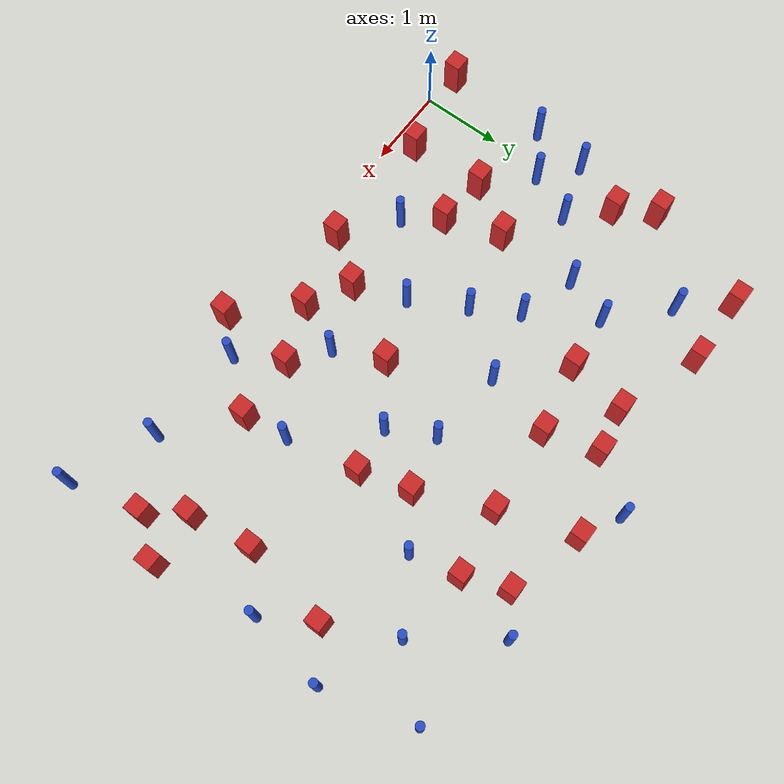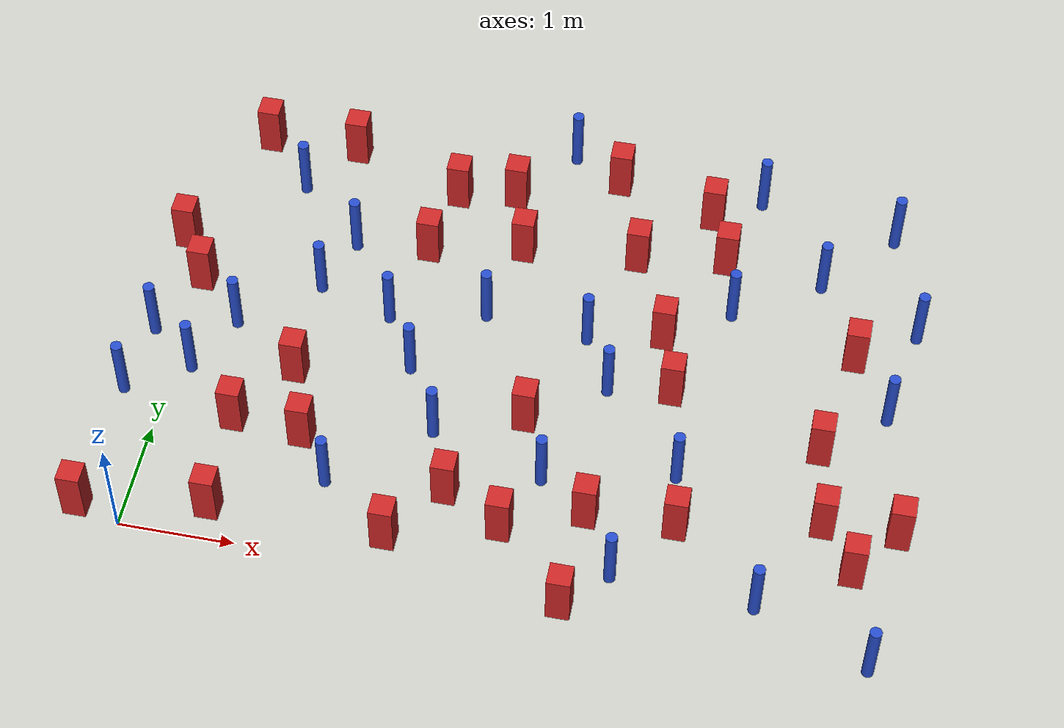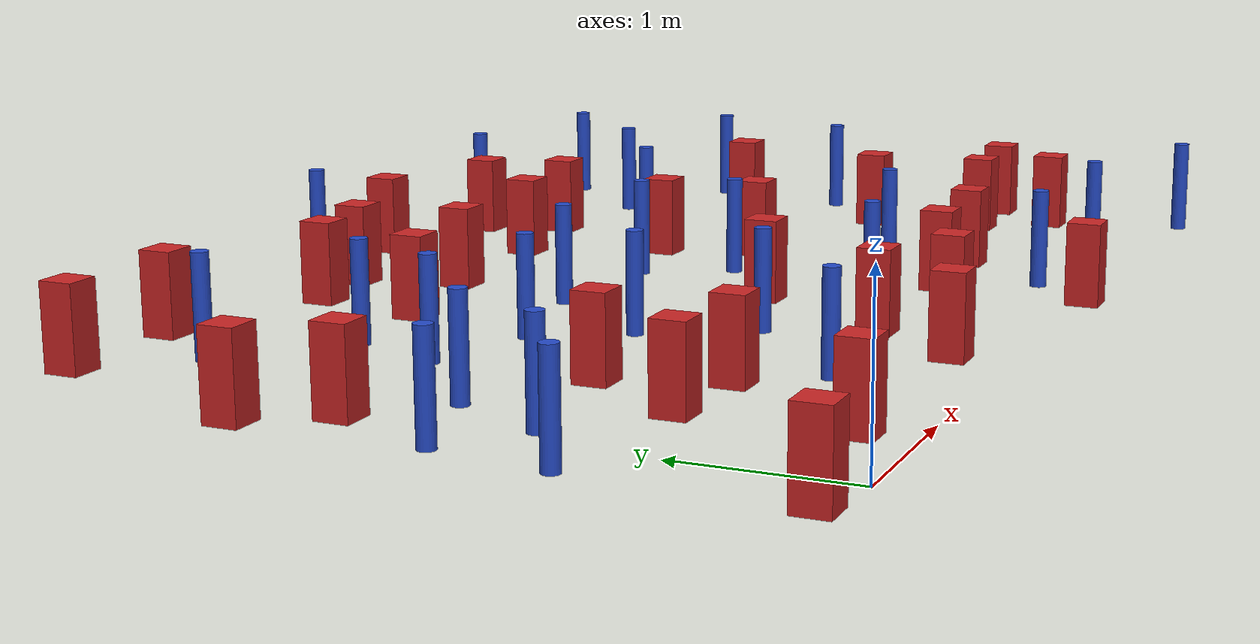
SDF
<sdf version="1.6">
 <model name="dense_84">
  <model name="square_post_obstacle0">
   <static>true</static>
   <pose>3.47742951445 4.54623904992 8.22691968438e-08 7.2212513382e-06 -7.54495500217e-07 2.29674213826e-05</pose>
   <link name="link">
    <pose>0 0 0.25 0 -0 0</pose>
    <inertial>
     <mass>100</mass>
     <inertia>
      <ixx>0.166667</ixx>
      <ixy>0</ixy>
      <ixz>0</ixz>
      <iyy>0.166667</iyy>
      <iyz>0</iyz>
      <izz>0.166667</izz>
     </inertia>
    </inertial>
    <collision name="collision"><geometry><box><size>.2 .2 .5</size></box></geometry></collision>
    <visual name="visual">
     <geometry><box><size>.2 .2 .5</size></box></geometry>
     <material>
      <script><name>Gazebo/Red</name><uri>file://media/materials/scripts/gazebo.material</uri></script>
     </material>
    </visual>
   </link>
  </model>
  <model name="square_post_obstacle1">
   <static>true</static>
   <pose>4.56344574119 0.853142851961 8.22691968438e-08 7.2212513382e-06 -7.54495500217e-07 2.29674213826e-05</pose>
   <link name="link">
    <pose>0 0 0.25 0 -0 0</pose>
    <inertial>
     <mass>100</mass>
     <inertia>
      <ixx>0.166667</ixx>
      <ixy>0</ixy>
      <ixz>0</ixz>
      <iyy>0.166667</iyy>
      <iyz>0</iyz>
      <izz>0.166667</izz>
     </inertia>
    </inertial>
    <collision name="collision"><geometry><box><size>.2 .2 .5</size></box></geometry></collision>
    <visual name="visual">
     <geometry><box><size>.2 .2 .5</size></box></geometry>
     <material>
      <script><name>Gazebo/Red</name><uri>file://media/materials/scripts/gazebo.material</uri></script>
     </material>
    </visual>
   </link>
  </model>
  <model name="square_post_obstacle3">
   <static>true</static>
   <pose>6.05488720477 0.67913591342 8.22691968438e-08 7.2212513382e-06 -7.54495500217e-07 2.29674213826e-05</pose>
   <link name="link">
    <pose>0 0 0.25 0 -0 0</pose>
    <inertial>
     <mass>100</mass>
     <inertia>
      <ixx>0.166667</ixx>
      <ixy>0</ixy>
      <ixz>0</ixz>
      <iyy>0.166667</iyy>
      <iyz>0</iyz>
      <izz>0.166667</izz>
     </inertia>
    </inertial>
    <collision name="collision"><geometry><box><size>.2 .2 .5</size></box></geometry></collision>
    <visual name="visual">
     <geometry><box><size>.2 .2 .5</size></box></geometry>
     <material>
      <script><name>Gazebo/Red</name><uri>file://media/materials/scripts/gazebo.material</uri></script>
     </material>
    </visual>
   </link>
  </model>
  <model name="pole_obstacle11">
   <static>true</static>
   <pose>0.41692032327 2.27141418955 2.88873142074e-08 -9.90536689663e-09 4.60219948993e-07 -1.20965994959e-07</pose>
   <link name="link">
    <pose>0 0 0.3 0 -0 0</pose>
    <inertial>
     <mass>1</mass>
     <inertia><ixx>0.145833</ixx><ixy>0</ixy><ixz>0</ixz><iyy>0.145833</iyy><iyz>0</iyz><izz>0.125</izz></inertia>
    </inertial>
    <collision name="collision">
     <geometry><cylinder><radius>0.05</radius><length>.6</length></cylinder></geometry>
    </collision>
    <visual name="visual">
     <geometry><cylinder><radius>0.05</radius><length>.6</length></cylinder></geometry>
     <material>
      <script><name>Gazebo/Blue</name><uri>file://media/materials/scripts/gazebo.material</uri></script>
     </material>
    </visual>
   </link>
  </model>
  <model name="pole_obstacle13">
   <static>true</static>
   <pose>0.152913802134 1.71130107241 2.88873142074e-08 -9.90536689569e-09 4.60219948996e-07 -1.20965994956e-07</pose>
   <link name="link">
    <pose>0 0 0.3 0 -0 0</pose>
    <inertial>
     <mass>1</mass>
     <inertia><ixx>0.145833</ixx><ixy>0</ixy><ixz>0</ixz><iyy>0.145833</iyy><iyz>0</iyz><izz>0.125</izz></inertia>
    </inertial>
    <collision name="collision">
     <geometry><cylinder><radius>0.05</radius><length>.6</length></cylinder></geometry>
    </collision>
    <visual name="visual">
     <geometry><cylinder><radius>0.05</radius><length>.6</length></cylinder></geometry>
     <material>
      <script><name>Gazebo/Blue</name><uri>file://media/materials/scripts/gazebo.material</uri></script>
     </material>
    </visual>
   </link>
  </model>
  <model name="square_post_obstacle12">
   <static>true</static>
   <pose>-0.271276717077 3.13880675814 8.22691968438e-08 7.2212513382e-06 -7.54495500217e-07 2.29674213826e-05</pose>
   <link name="link">
    <pose>0 0 0.25 0 -0 0</pose>
    <inertial>
     <mass>100</mass>
     <inertia>
      <ixx>0.166667</ixx>
      <ixy>0</ixy>
      <ixz>0</ixz>
      <iyy>0.166667</iyy>
      <iyz>0</iyz>
      <izz>0.166667</izz>
     </inertia>
    </inertial>
    <collision name="collision"><geometry><box><size>.2 .2 .5</size></box></geometry></collision>
    <visual name="visual">
     <geometry><box><size>.2 .2 .5</size></box></geometry>
     <material>
      <script><name>Gazebo/Red</name><uri>file://media/materials/scripts/gazebo.material</uri></script>
     </material>
    </visual>
   </link>
  </model>
  <model name="pole_obstacle24">
   <static>true</static>
   <pose>1.59024964066 0.750436369844 2.88873142074e-08 -9.90536689692e-09 4.60219948993e-07 -1.20965994958e-07</pose>
   <link name="link">
    <pose>0 0 0.3 0 -0 0</pose>
    <inertial>
     <mass>1</mass>
     <inertia><ixx>0.145833</ixx><ixy>0</ixy><ixz>0</ixz><iyy>0.145833</iyy><iyz>0</iyz><izz>0.125</izz></inertia>
    </inertial>
    <collision name="collision">
     <geometry><cylinder><radius>0.05</radius><length>.6</length></cylinder></geometry>
    </collision>
    <visual name="visual">
     <geometry><cylinder><radius>0.05</radius><length>.6</length></cylinder></geometry>
     <material>
      <script><name>Gazebo/Blue</name><uri>file://media/materials/scripts/gazebo.material</uri></script>
     </material>
    </visual>
   </link>
  </model>
  <model name="square_post_obstacle24">
   <static>true</static>
   <pose>4.31556763896 2.23022719634 8.22691968438e-08 7.2212513382e-06 -7.54495500217e-07 2.29674213826e-05</pose>
   <link name="link">
    <pose>0 0 0.25 0 -0 0</pose>
    <inertial>
     <mass>100</mass>
     <inertia>
      <ixx>0.166667</ixx>
      <ixy>0</ixy>
      <ixz>0</ixz>
      <iyy>0.166667</iyy>
      <iyz>0</iyz>
      <izz>0.166667</izz>
     </inertia>
    </inertial>
    <collision name="collision"><geometry><box><size>.2 .2 .5</size></box></geometry></collision>
    <visual name="visual">
     <geometry><box><size>.2 .2 .5</size></box></geometry>
     <material>
      <script><name>Gazebo/Red</name><uri>file://media/materials/scripts/gazebo.material</uri></script>
     </material>
    </visual>
   </link>
  </model>
  <model name="square_post_obstacle29">
   <static>true</static>
   <pose>2.04416554064 4.11146892054 8.22691968438e-08 7.22125133819e-06 -7.54495500217e-07 2.29674213826e-05</pose>
   <link name="link">
    <pose>0 0 0.25 0 -0 0</pose>
    <inertial>
     <mass>100</mass>
     <inertia>
      <ixx>0.166667</ixx>
      <ixy>0</ixy>
      <ixz>0</ixz>
      <iyy>0.166667</iyy>
      <iyz>0</iyz>
      <izz>0.166667</izz>
     </inertia>
    </inertial>
    <collision name="collision"><geometry><box><size>.2 .2 .5</size></box></geometry></collision>
    <visual name="visual">
     <geometry><box><size>.2 .2 .5</size></box></geometry>
     <material>
      <script><name>Gazebo/Red</name><uri>file://media/materials/scripts/gazebo.material</uri></script>
     </material>
    </visual>
   </link>
  </model>
  <model name="square_post_obstacle34">
   <static>true</static>
   <pose>2.21258162779 0.286867539895 8.22691968438e-08 7.2212513382e-06 -7.54495500217e-07 2.29674213826e-05</pose>
   <link name="link">
    <pose>0 0 0.25 0 -0 0</pose>
    <inertial>
     <mass>100</mass>
     <inertia>
      <ixx>0.166667</ixx>
      <ixy>0</ixy>
      <ixz>0</ixz>
      <iyy>0.166667</iyy>
      <iyz>0</iyz>
      <izz>0.166667</izz>
     </inertia>
    </inertial>
    <collision name="collision"><geometry><box><size>.2 .2 .5</size></box></geometry></collision>
    <visual name="visual">
     <geometry><box><size>.2 .2 .5</size></box></geometry>
     <material>
      <script><name>Gazebo/Red</name><uri>file://media/materials/scripts/gazebo.material</uri></script>
     </material>
    </visual>
   </link>
  </model>
  <model name="pole_obstacle43">
   <static>true</static>
   <pose>5.31301693984 0.208781446296 2.88873142074e-08 -9.90536689438e-09 4.60219948999e-07 -1.20965994956e-07</pose>
   <link name="link">
    <pose>0 0 0.3 0 -0 0</pose>
    <inertial>
     <mass>1</mass>
     <inertia><ixx>0.145833</ixx><ixy>0</ixy><ixz>0</ixz><iyy>0.145833</iyy><iyz>0</iyz><izz>0.125</izz></inertia>
    </inertial>
    <collision name="collision">
     <geometry><cylinder><radius>0.05</radius><length>.6</length></cylinder></geometry>
    </collision>
    <visual name="visual">
     <geometry><cylinder><radius>0.05</radius><length>.6</length></cylinder></geometry>
     <material>
      <script><name>Gazebo/Blue</name><uri>file://media/materials/scripts/gazebo.material</uri></script>
     </material>
    </visual>
   </link>
  </model>
  <model name="square_post_obstacle38">
   <static>true</static>
   <pose>4.37278872621 4.28910100385 8.22691968438e-08 7.2212513382e-06 -7.54495500217e-07 2.29674213826e-05</pose>
   <link name="link">
    <pose>0 0 0.25 0 -0 0</pose>
    <inertial>
     <mass>100</mass>
     <inertia>
      <ixx>0.166667</ixx>
      <ixy>0</ixy>
      <ixz>0</ixz>
      <iyy>0.166667</iyy>
      <iyz>0</iyz>
      <izz>0.166667</izz>
     </inertia>
    </inertial>
    <collision name="collision"><geometry><box><size>.2 .2 .5</size></box></geometry></collision>
    <visual name="visual">
     <geometry><box><size>.2 .2 .5</size></box></geometry>
     <material>
      <script><name>Gazebo/Red</name><uri>file://media/materials/scripts/gazebo.material</uri></script>
     </material>
    </visual>
   </link>
  </model>
  <model name="square_post_obstacle50">
   <static>true</static>
   <pose>0.704228342096 0.293658723226 8.22691968438e-08 7.22125133819e-06 -7.54495500217e-07 2.29674213826e-05</pose>
   <link name="link">
    <pose>0 0 0.25 0 -0 0</pose>
    <inertial>
     <mass>100</mass>
     <inertia>
      <ixx>0.166667</ixx>
      <ixy>0</ixy>
      <ixz>0</ixz>
      <iyy>0.166667</iyy>
      <iyz>0</iyz>
      <izz>0.166667</izz>
     </inertia>
    </inertial>
    <collision name="collision"><geometry><box><size>.2 .2 .5</size></box></geometry></collision>
    <visual name="visual">
     <geometry><box><size>.2 .2 .5</size></box></geometry>
     <material>
      <script><name>Gazebo/Red</name><uri>file://media/materials/scripts/gazebo.material</uri></script>
     </material>
    </visual>
   </link>
  </model>
  <model name="square_post_obstacle51">
   <static>true</static>
   <pose>3.80689490585 0.824405874443 8.22691968438e-08 7.2212513382e-06 -7.54495500217e-07 2.29674213826e-05</pose>
   <link name="link">
    <pose>0 0 0.25 0 -0 0</pose>
    <inertial>
     <mass>100</mass>
     <inertia>
      <ixx>0.166667</ixx>
      <ixy>0</ixy>
      <ixz>0</ixz>
      <iyy>0.166667</iyy>
      <iyz>0</iyz>
      <izz>0.166667</izz>
     </inertia>
    </inertial>
    <collision name="collision"><geometry><box><size>.2 .2 .5</size></box></geometry></collision>
    <visual name="visual">
     <geometry><box><size>.2 .2 .5</size></box></geometry>
     <material>
      <script><name>Gazebo/Red</name><uri>file://media/materials/scripts/gazebo.material</uri></script>
     </material>
    </visual>
   </link>
  </model>
  <model name="square_post_obstacle58">
   <static>true</static>
   <pose>3.13265907672 0.556025576063 8.22691968438e-08 7.2212513382e-06 -7.54495500217e-07 2.29674213826e-05</pose>
   <link name="link">
    <pose>0 0 0.25 0 -0 0</pose>
    <inertial>
     <mass>100</mass>
     <inertia>
      <ixx>0.166667</ixx>
      <ixy>0</ixy>
      <ixz>0</ixz>
      <iyy>0.166667</iyy>
      <iyz>0</iyz>
      <izz>0.166667</izz>
     </inertia>
    </inertial>
    <collision name="collision"><geometry><box><size>.2 .2 .5</size></box></geometry></collision>
    <visual name="visual">
     <geometry><box><size>.2 .2 .5</size></box></geometry>
     <material>
      <script><name>Gazebo/Red</name><uri>file://media/materials/scripts/gazebo.material</uri></script>
     </material>
    </visual>
   </link>
  </model>
  <model name="square_post_obstacle60">
   <static>true</static>
   <pose>5.64865577283 1.85091283785 8.22691968438e-08 7.2212513382e-06 -7.54495500217e-07 2.29674213826e-05</pose>
   <link name="link">
    <pose>0 0 0.25 0 -0 0</pose>
    <inertial>
     <mass>100</mass>
     <inertia>
      <ixx>0.166667</ixx>
      <ixy>0</ixy>
      <ixz>0</ixz>
      <iyy>0.166667</iyy>
      <iyz>0</iyz>
      <izz>0.166667</izz>
     </inertia>
    </inertial>
    <collision name="collision"><geometry><box><size>.2 .2 .5</size></box></geometry></collision>
    <visual name="visual">
     <geometry><box><size>.2 .2 .5</size></box></geometry>
     <material>
      <script><name>Gazebo/Red</name><uri>file://media/materials/scripts/gazebo.material</uri></script>
     </material>
    </visual>
   </link>
  </model>
  <model name="pole_obstacle71">
   <static>true</static>
   <pose>-0.360008039916 1.37427951775 2.88873142074e-08 -9.90536689905e-09 4.60219948988e-07 -1.2096599496e-07</pose>
   <link name="link">
    <pose>0 0 0.3 0 -0 0</pose>
    <inertial>
     <mass>1</mass>
     <inertia><ixx>0.145833</ixx><ixy>0</ixy><ixz>0</ixz><iyy>0.145833</iyy><iyz>0</iyz><izz>0.125</izz></inertia>
    </inertial>
    <collision name="collision">
     <geometry><cylinder><radius>0.05</radius><length>.6</length></cylinder></geometry>
    </collision>
    <visual name="visual">
     <geometry><cylinder><radius>0.05</radius><length>.6</length></cylinder></geometry>
     <material>
      <script><name>Gazebo/Blue</name><uri>file://media/materials/scripts/gazebo.material</uri></script>
     </material>
    </visual>
   </link>
  </model>
  <model name="pole_obstacle72">
   <static>true</static>
   <pose>6.28156783449 -0.192312432924 2.88873142074e-08 -9.90536689378e-09 4.60219949e-07 -1.20965994955e-07</pose>
   <link name="link">
    <pose>0 0 0.3 0 -0 0</pose>
    <inertial>
     <mass>1</mass>
     <inertia><ixx>0.145833</ixx><ixy>0</ixy><ixz>0</ixz><iyy>0.145833</iyy><iyz>0</iyz><izz>0.125</izz></inertia>
    </inertial>
    <collision name="collision">
     <geometry><cylinder><radius>0.05</radius><length>.6</length></cylinder></geometry>
    </collision>
    <visual name="visual">
     <geometry><cylinder><radius>0.05</radius><length>.6</length></cylinder></geometry>
     <material>
      <script><name>Gazebo/Blue</name><uri>file://media/materials/scripts/gazebo.material</uri></script>
     </material>
    </visual>
   </link>
  </model>
  <model name="pole_obstacle76">
   <static>true</static>
   <pose>1.24704807675 3.35923513077 2.88873142074e-08 -9.90536689791e-09 4.6021994899e-07 -1.20965994959e-07</pose>
   <link name="link">
    <pose>0 0 0.3 0 -0 0</pose>
    <inertial>
     <mass>1</mass>
     <inertia><ixx>0.145833</ixx><ixy>0</ixy><ixz>0</ixz><iyy>0.145833</iyy><iyz>0</iyz><izz>0.125</izz></inertia>
    </inertial>
    <collision name="collision">
     <geometry><cylinder><radius>0.05</radius><length>.6</length></cylinder></geometry>
    </collision>
    <visual name="visual">
     <geometry><cylinder><radius>0.05</radius><length>.6</length></cylinder></geometry>
     <material>
      <script><name>Gazebo/Blue</name><uri>file://media/materials/scripts/gazebo.material</uri></script>
     </material>
    </visual>
   </link>
  </model>
  <model name="pole_obstacle82">
   <static>true</static>
   <pose>6.17669661662 2.3231408978 2.88873142074e-08 -9.90536690245e-09 4.6021994898e-07 -1.20965994966e-07</pose>
   <link name="link">
    <pose>0 0 0.3 0 -0 0</pose>
    <inertial>
     <mass>1</mass>
     <inertia><ixx>0.145833</ixx><ixy>0</ixy><ixz>0</ixz><iyy>0.145833</iyy><iyz>0</iyz><izz>0.125</izz></inertia>
    </inertial>
    <collision name="collision">
     <geometry><cylinder><radius>0.05</radius><length>.6</length></cylinder></geometry>
    </collision>
    <visual name="visual">
     <geometry><cylinder><radius>0.05</radius><length>.6</length></cylinder></geometry>
     <material>
      <script><name>Gazebo/Blue</name><uri>file://media/materials/scripts/gazebo.material</uri></script>
     </material>
    </visual>
   </link>
  </model>
  <model name="square_post_obstacle74">
   <static>true</static>
   <pose>-0.382443119235 0.111224873277 8.22691968438e-08 7.2212513382e-06 -7.54495500217e-07 2.29674213826e-05</pose>
   <link name="link">
    <pose>0 0 0.25 0 -0 0</pose>
    <inertial>
     <mass>100</mass>
     <inertia>
      <ixx>0.166667</ixx>
      <ixy>0</ixy>
      <ixz>0</ixz>
      <iyy>0.166667</iyy>
      <iyz>0</iyz>
      <izz>0.166667</izz>
     </inertia>
    </inertial>
    <collision name="collision"><geometry><box><size>.2 .2 .5</size></box></geometry></collision>
    <visual name="visual">
     <geometry><box><size>.2 .2 .5</size></box></geometry>
     <material>
      <script><name>Gazebo/Red</name><uri>file://media/materials/scripts/gazebo.material</uri></script>
     </material>
    </visual>
   </link>
  </model>
  <model name="pole_obstacle87">
   <static>true</static>
   <pose>4.79421285368 4.56980662866 2.88873142074e-08 -9.90536690842e-09 4.60219948965e-07 -1.20965994976e-07</pose>
   <link name="link">
    <pose>0 0 0.3 0 -0 0</pose>
    <inertial>
     <mass>1</mass>
     <inertia><ixx>0.145833</ixx><ixy>0</ixy><ixz>0</ixz><iyy>0.145833</iyy><iyz>0</iyz><izz>0.125</izz></inertia>
    </inertial>
    <collision name="collision">
     <geometry><cylinder><radius>0.05</radius><length>.6</length></cylinder></geometry>
    </collision>
    <visual name="visual">
     <geometry><cylinder><radius>0.05</radius><length>.6</length></cylinder></geometry>
     <material>
      <script><name>Gazebo/Blue</name><uri>file://media/materials/scripts/gazebo.material</uri></script>
     </material>
    </visual>
   </link>
  </model>
  <model name="square_post_obstacle94">
   <static>true</static>
   <pose>0.670614310528 1.22350993806 8.22691968438e-08 7.2212513382e-06 -7.54495500217e-07 2.29674213826e-05</pose>
   <link name="link">
    <pose>0 0 0.25 0 -0 0</pose>
    <inertial>
     <mass>100</mass>
     <inertia>
      <ixx>0.166667</ixx>
      <ixy>0</ixy>
      <ixz>0</ixz>
      <iyy>0.166667</iyy>
      <iyz>0</iyz>
      <izz>0.166667</izz>
     </inertia>
    </inertial>
    <collision name="collision"><geometry><box><size>.2 .2 .5</size></box></geometry></collision>
    <visual name="visual">
     <geometry><box><size>.2 .2 .5</size></box></geometry>
     <material>
      <script><name>Gazebo/Red</name><uri>file://media/materials/scripts/gazebo.material</uri></script>
     </material>
    </visual>
   </link>
  </model>
  <model name="pole_obstacle105">
   <static>true</static>
   <pose>4.109856473 0.279371529335 2.88873142074e-08 -9.90536689883e-09 4.60219948988e-07 -1.20965994961e-07</pose>
   <link name="link">
    <pose>0 0 0.3 0 -0 0</pose>
    <inertial>
     <mass>1</mass>
     <inertia><ixx>0.145833</ixx><ixy>0</ixy><ixz>0</ixz><iyy>0.145833</iyy><iyz>0</iyz><izz>0.125</izz></inertia>
    </inertial>
    <collision name="collision">
     <geometry><cylinder><radius>0.05</radius><length>.6</length></cylinder></geometry>
    </collision>
    <visual name="visual">
     <geometry><cylinder><radius>0.05</radius><length>.6</length></cylinder></geometry>
     <material>
      <script><name>Gazebo/Blue</name><uri>file://media/materials/scripts/gazebo.material</uri></script>
     </material>
    </visual>
   </link>
  </model>
  <model name="square_post_obstacle105">
   <static>true</static>
   <pose>2.75124358407 3.57715138471 8.22691968438e-08 7.2212513382e-06 -7.54495500217e-07 2.29674213826e-05</pose>
   <link name="link">
    <pose>0 0 0.25 0 -0 0</pose>
    <inertial>
     <mass>100</mass>
     <inertia>
      <ixx>0.166667</ixx>
      <ixy>0</ixy>
      <ixz>0</ixz>
      <iyy>0.166667</iyy>
      <iyz>0</iyz>
      <izz>0.166667</izz>
     </inertia>
    </inertial>
    <collision name="collision"><geometry><box><size>.2 .2 .5</size></box></geometry></collision>
    <visual name="visual">
     <geometry><box><size>.2 .2 .5</size></box></geometry>
     <material>
      <script><name>Gazebo/Red</name><uri>file://media/materials/scripts/gazebo.material</uri></script>
     </material>
    </visual>
   </link>
  </model>
  <model name="pole_obstacle112">
   <static>true</static>
   <pose>5.44602784341 3.68789140573 2.88873142074e-08 -9.90536690245e-09 4.6021994898e-07 -1.20965994966e-07</pose>
   <link name="link">
    <pose>0 0 0.3 0 -0 0</pose>
    <inertial>
     <mass>1</mass>
     <inertia><ixx>0.145833</ixx><ixy>0</ixy><ixz>0</ixz><iyy>0.145833</iyy><iyz>0</iyz><izz>0.125</izz></inertia>
    </inertial>
    <collision name="collision">
     <geometry><cylinder><radius>0.05</radius><length>.6</length></cylinder></geometry>
    </collision>
    <visual name="visual">
     <geometry><cylinder><radius>0.05</radius><length>.6</length></cylinder></geometry>
     <material>
      <script><name>Gazebo/Blue</name><uri>file://media/materials/scripts/gazebo.material</uri></script>
     </material>
    </visual>
   </link>
  </model>
  <model name="pole_obstacle115">
   <static>true</static>
   <pose>2.56790089869 2.77761145715 2.88873142074e-08 -9.90536690232e-09 4.6021994898e-07 -1.20965994968e-07</pose>
   <link name="link">
    <pose>0 0 0.3 0 -0 0</pose>
    <inertial>
     <mass>1</mass>
     <inertia><ixx>0.145833</ixx><ixy>0</ixy><ixz>0</ixz><iyy>0.145833</iyy><iyz>0</iyz><izz>0.125</izz></inertia>
    </inertial>
    <collision name="collision">
     <geometry><cylinder><radius>0.05</radius><length>.6</length></cylinder></geometry>
    </collision>
    <visual name="visual">
     <geometry><cylinder><radius>0.05</radius><length>.6</length></cylinder></geometry>
     <material>
      <script><name>Gazebo/Blue</name><uri>file://media/materials/scripts/gazebo.material</uri></script>
     </material>
    </visual>
   </link>
  </model>
  <model name="square_post_obstacle113">
   <static>true</static>
   <pose>5.82807037629 2.90422178358 8.22691968438e-08 7.2212513382e-06 -7.54495500217e-07 2.29674213826e-05</pose>
   <link name="link">
    <pose>0 0 0.25 0 -0 0</pose>
    <inertial>
     <mass>100</mass>
     <inertia>
      <ixx>0.166667</ixx>
      <ixy>0</ixy>
      <ixz>0</ixz>
      <iyy>0.166667</iyy>
      <iyz>0</iyz>
      <izz>0.166667</izz>
     </inertia>
    </inertial>
    <collision name="collision"><geometry><box><size>.2 .2 .5</size></box></geometry></collision>
    <visual name="visual">
     <geometry><box><size>.2 .2 .5</size></box></geometry>
     <material>
      <script><name>Gazebo/Red</name><uri>file://media/materials/scripts/gazebo.material</uri></script>
     </material>
    </visual>
   </link>
  </model>
  <model name="square_post_obstacle115">
   <static>true</static>
   <pose>2.61249766033 0.830351981302 8.22691968438e-08 7.2212513382e-06 -7.54495500217e-07 2.29674213826e-05</pose>
   <link name="link">
    <pose>0 0 0.25 0 -0 0</pose>
    <inertial>
     <mass>100</mass>
     <inertia>
      <ixx>0.166667</ixx>
      <ixy>0</ixy>
      <ixz>0</ixz>
      <iyy>0.166667</iyy>
      <iyz>0</iyz>
      <izz>0.166667</izz>
     </inertia>
    </inertial>
    <collision name="collision"><geometry><box><size>.2 .2 .5</size></box></geometry></collision>
    <visual name="visual">
     <geometry><box><size>.2 .2 .5</size></box></geometry>
     <material>
      <script><name>Gazebo/Red</name><uri>file://media/materials/scripts/gazebo.material</uri></script>
     </material>
    </visual>
   </link>
  </model>
  <model name="pole_obstacle118">
   <static>true</static>
   <pose>1.05395910849 2.81342862565 2.88873142074e-08 -9.90536689791e-09 4.6021994899e-07 -1.20965994959e-07</pose>
   <link name="link">
    <pose>0 0 0.3 0 -0 0</pose>
    <inertial>
     <mass>1</mass>
     <inertia><ixx>0.145833</ixx><ixy>0</ixy><ixz>0</ixz><iyy>0.145833</iyy><iyz>0</iyz><izz>0.125</izz></inertia>
    </inertial>
    <collision name="collision">
     <geometry><cylinder><radius>0.05</radius><length>.6</length></cylinder></geometry>
    </collision>
    <visual name="visual">
     <geometry><cylinder><radius>0.05</radius><length>.6</length></cylinder></geometry>
     <material>
      <script><name>Gazebo/Blue</name><uri>file://media/materials/scripts/gazebo.material</uri></script>
     </material>
    </visual>
   </link>
  </model>
  <model name="pole_obstacle119">
   <static>true</static>
   <pose>2.37701578899 1.43370433643 2.88873142074e-08 -9.90536689395e-09 4.60219949e-07 -1.20965994953e-07</pose>
   <link name="link">
    <pose>0 0 0.3 0 -0 0</pose>
    <inertial>
     <mass>1</mass>
     <inertia><ixx>0.145833</ixx><ixy>0</ixy><ixz>0</ixz><iyy>0.145833</iyy><iyz>0</iyz><izz>0.125</izz></inertia>
    </inertial>
    <collision name="collision">
     <geometry><cylinder><radius>0.05</radius><length>.6</length></cylinder></geometry>
    </collision>
    <visual name="visual">
     <geometry><cylinder><radius>0.05</radius><length>.6</length></cylinder></geometry>
     <material>
      <script><name>Gazebo/Blue</name><uri>file://media/materials/scripts/gazebo.material</uri></script>
     </material>
    </visual>
   </link>
  </model>
  <model name="square_post_obstacle132">
   <static>true</static>
   <pose>1.00806727909 4.47018556694 8.22691968438e-08 7.2212513382e-06 -7.54495500217e-07 2.29674213826e-05</pose>
   <link name="link">
    <pose>0 0 0.25 0 -0 0</pose>
    <inertial>
     <mass>100</mass>
     <inertia>
      <ixx>0.166667</ixx>
      <ixy>0</ixy>
      <ixz>0</ixz>
      <iyy>0.166667</iyy>
      <iyz>0</iyz>
      <izz>0.166667</izz>
     </inertia>
    </inertial>
    <collision name="collision"><geometry><box><size>.2 .2 .5</size></box></geometry></collision>
    <visual name="visual">
     <geometry><box><size>.2 .2 .5</size></box></geometry>
     <material>
      <script><name>Gazebo/Red</name><uri>file://media/materials/scripts/gazebo.material</uri></script>
     </material>
    </visual>
   </link>
  </model>
  <model name="pole_obstacle134">
   <static>true</static>
   <pose>-0.275778565291 2.05693855828 2.88873142074e-08 -9.90536689433e-09 4.60219948999e-07 -1.20965994955e-07</pose>
   <link name="link">
    <pose>0 0 0.3 0 -0 0</pose>
    <inertial>
     <mass>1</mass>
     <inertia><ixx>0.145833</ixx><ixy>0</ixy><ixz>0</ixz><iyy>0.145833</iyy><iyz>0</iyz><izz>0.125</izz></inertia>
    </inertial>
    <collision name="collision">
     <geometry><cylinder><radius>0.05</radius><length>.6</length></cylinder></geometry>
    </collision>
    <visual name="visual">
     <geometry><cylinder><radius>0.05</radius><length>.6</length></cylinder></geometry>
     <material>
      <script><name>Gazebo/Blue</name><uri>file://media/materials/scripts/gazebo.material</uri></script>
     </material>
    </visual>
   </link>
  </model>
  <model name="pole_obstacle135">
   <static>true</static>
   <pose>4.49138830857 1.37029863379 2.88873142074e-08 -9.90536689445e-09 4.60219948999e-07 -1.20965994956e-07</pose>
   <link name="link">
    <pose>0 0 0.3 0 -0 0</pose>
    <inertial>
     <mass>1</mass>
     <inertia><ixx>0.145833</ixx><ixy>0</ixy><ixz>0</ixz><iyy>0.145833</iyy><iyz>0</iyz><izz>0.125</izz></inertia>
    </inertial>
    <collision name="collision">
     <geometry><cylinder><radius>0.05</radius><length>.6</length></cylinder></geometry>
    </collision>
    <visual name="visual">
     <geometry><cylinder><radius>0.05</radius><length>.6</length></cylinder></geometry>
     <material>
      <script><name>Gazebo/Blue</name><uri>file://media/materials/scripts/gazebo.material</uri></script>
     </material>
    </visual>
   </link>
  </model>
  <model name="pole_obstacle138">
   <static>true</static>
   <pose>3.01794356888 4.79457096138 2.88873142074e-08 -9.90536689859e-09 4.60219948989e-07 -1.20965994961e-07</pose>
   <link name="link">
    <pose>0 0 0.3 0 -0 0</pose>
    <inertial>
     <mass>1</mass>
     <inertia><ixx>0.145833</ixx><ixy>0</ixy><ixz>0</ixz><iyy>0.145833</iyy><iyz>0</iyz><izz>0.125</izz></inertia>
    </inertial>
    <collision name="collision">
     <geometry><cylinder><radius>0.05</radius><length>.6</length></cylinder></geometry>
    </collision>
    <visual name="visual">
     <geometry><cylinder><radius>0.05</radius><length>.6</length></cylinder></geometry>
     <material>
      <script><name>Gazebo/Blue</name><uri>file://media/materials/scripts/gazebo.material</uri></script>
     </material>
    </visual>
   </link>
  </model>
  <model name="square_post_obstacle136">
   <static>true</static>
   <pose>1.06075308042 1.8361243549 8.22691968438e-08 7.2212513382e-06 -7.54495500217e-07 2.29674213826e-05</pose>
   <link name="link">
    <pose>0 0 0.25 0 -0 0</pose>
    <inertial>
     <mass>100</mass>
     <inertia>
      <ixx>0.166667</ixx>
      <ixy>0</ixy>
      <ixz>0</ixz>
      <iyy>0.166667</iyy>
      <iyz>0</iyz>
      <izz>0.166667</izz>
     </inertia>
    </inertial>
    <collision name="collision"><geometry><box><size>.2 .2 .5</size></box></geometry></collision>
    <visual name="visual">
     <geometry><box><size>.2 .2 .5</size></box></geometry>
     <material>
      <script><name>Gazebo/Red</name><uri>file://media/materials/scripts/gazebo.material</uri></script>
     </material>
    </visual>
   </link>
  </model>
  <model name="square_post_obstacle141">
   <static>true</static>
   <pose>3.78027963631 3.66145778772 8.22691968438e-08 7.2212513382e-06 -7.54495500217e-07 2.29674213826e-05</pose>
   <link name="link">
    <pose>0 0 0.25 0 -0 0</pose>
    <inertial>
     <mass>100</mass>
     <inertia>
      <ixx>0.166667</ixx>
      <ixy>0</ixy>
      <ixz>0</ixz>
      <iyy>0.166667</iyy>
      <iyz>0</iyz>
      <izz>0.166667</izz>
     </inertia>
    </inertial>
    <collision name="collision"><geometry><box><size>.2 .2 .5</size></box></geometry></collision>
    <visual name="visual">
     <geometry><box><size>.2 .2 .5</size></box></geometry>
     <material>
      <script><name>Gazebo/Red</name><uri>file://media/materials/scripts/gazebo.material</uri></script>
     </material>
    </visual>
   </link>
  </model>
  <model name="square_post_obstacle142">
   <static>true</static>
   <pose>4.56599875189 3.78102459788 8.22691968438e-08 7.2212513382e-06 -7.54495500217e-07 2.29674213826e-05</pose>
   <link name="link">
    <pose>0 0 0.25 0 -0 0</pose>
    <inertial>
     <mass>100</mass>
     <inertia>
      <ixx>0.166667</ixx>
      <ixy>0</ixy>
      <ixz>0</ixz>
      <iyy>0.166667</iyy>
      <iyz>0</iyz>
      <izz>0.166667</izz>
     </inertia>
    </inertial>
    <collision name="collision"><geometry><box><size>.2 .2 .5</size></box></geometry></collision>
    <visual name="visual">
     <geometry><box><size>.2 .2 .5</size></box></geometry>
     <material>
      <script><name>Gazebo/Red</name><uri>file://media/materials/scripts/gazebo.material</uri></script>
     </material>
    </visual>
   </link>
  </model>
  <model name="pole_obstacle150">
   <static>true</static>
   <pose>3.37771403027 1.12221853903 2.88873142074e-08 -9.90536689395e-09 4.60219949e-07 -1.20965994953e-07</pose>
   <link name="link">
    <pose>0 0 0.3 0 -0 0</pose>
    <inertial>
     <mass>1</mass>
     <inertia><ixx>0.145833</ixx><ixy>0</ixy><ixz>0</ixz><iyy>0.145833</iyy><iyz>0</iyz><izz>0.125</izz></inertia>
    </inertial>
    <collision name="collision">
     <geometry><cylinder><radius>0.05</radius><length>.6</length></cylinder></geometry>
    </collision>
    <visual name="visual">
     <geometry><cylinder><radius>0.05</radius><length>.6</length></cylinder></geometry>
     <material>
      <script><name>Gazebo/Blue</name><uri>file://media/materials/scripts/gazebo.material</uri></script>
     </material>
    </visual>
   </link>
  </model>
  <model name="pole_obstacle155">
   <static>true</static>
   <pose>3.76198942432 2.16640589283 2.88873142074e-08 -9.90536690232e-09 4.6021994898e-07 -1.20965994968e-07</pose>
   <link name="link">
    <pose>0 0 0.3 0 -0 0</pose>
    <inertial>
     <mass>1</mass>
     <inertia><ixx>0.145833</ixx><ixy>0</ixy><ixz>0</ixz><iyy>0.145833</iyy><iyz>0</iyz><izz>0.125</izz></inertia>
    </inertial>
    <collision name="collision">
     <geometry><cylinder><radius>0.05</radius><length>.6</length></cylinder></geometry>
    </collision>
    <visual name="visual">
     <geometry><cylinder><radius>0.05</radius><length>.6</length></cylinder></geometry>
     <material>
      <script><name>Gazebo/Blue</name><uri>file://media/materials/scripts/gazebo.material</uri></script>
     </material>
    </visual>
   </link>
  </model>
  <model name="pole_obstacle156">
   <static>true</static>
   <pose>1.72802119756 2.5918614242 2.88873142074e-08 -9.90536689791e-09 4.6021994899e-07 -1.20965994959e-07</pose>
   <link name="link">
    <pose>0 0 0.3 0 -0 0</pose>
    <inertial>
     <mass>1</mass>
     <inertia><ixx>0.145833</ixx><ixy>0</ixy><ixz>0</ixz><iyy>0.145833</iyy><iyz>0</iyz><izz>0.125</izz></inertia>
    </inertial>
    <collision name="collision">
     <geometry><cylinder><radius>0.05</radius><length>.6</length></cylinder></geometry>
    </collision>
    <visual name="visual">
     <geometry><cylinder><radius>0.05</radius><length>.6</length></cylinder></geometry>
     <material>
      <script><name>Gazebo/Blue</name><uri>file://media/materials/scripts/gazebo.material</uri></script>
     </material>
    </visual>
   </link>
  </model>
  <model name="square_post_obstacle156">
   <static>true</static>
   <pose>1.91541433146 3.4142076947 8.22691968438e-08 7.2212513382e-06 -7.54495500217e-07 2.29674213826e-05</pose>
   <link name="link">
    <pose>0 0 0.25 0 -0 0</pose>
    <inertial>
     <mass>100</mass>
     <inertia>
      <ixx>0.166667</ixx>
      <ixy>0</ixy>
      <ixz>0</ixz>
      <iyy>0.166667</iyy>
      <iyz>0</iyz>
      <izz>0.166667</izz>
     </inertia>
    </inertial>
    <collision name="collision"><geometry><box><size>.2 .2 .5</size></box></geometry></collision>
    <visual name="visual">
     <geometry><box><size>.2 .2 .5</size></box></geometry>
     <material>
      <script><name>Gazebo/Red</name><uri>file://media/materials/scripts/gazebo.material</uri></script>
     </material>
    </visual>
   </link>
  </model>
  <model name="square_post_obstacle162">
   <static>true</static>
   <pose>4.14823338981 2.82570264748 8.22691968438e-08 7.2212513382e-06 -7.54495500217e-07 2.29674213826e-05</pose>
   <link name="link">
    <pose>0 0 0.25 0 -0 0</pose>
    <inertial>
     <mass>100</mass>
     <inertia>
      <ixx>0.166667</ixx>
      <ixy>0</ixy>
      <ixz>0</ixz>
      <iyy>0.166667</iyy>
      <iyz>0</iyz>
      <izz>0.166667</izz>
     </inertia>
    </inertial>
    <collision name="collision"><geometry><box><size>.2 .2 .5</size></box></geometry></collision>
    <visual name="visual">
     <geometry><box><size>.2 .2 .5</size></box></geometry>
     <material>
      <script><name>Gazebo/Red</name><uri>file://media/materials/scripts/gazebo.material</uri></script>
     </material>
    </visual>
   </link>
  </model>
  <model name="square_post_obstacle164">
   <static>true</static>
   <pose>3.76026765252 -0.0889878182968 8.22691968438e-08 7.22125133819e-06 -7.54495500217e-07 2.29674213826e-05</pose>
   <link name="link">
    <pose>0 0 0.25 0 -0 0</pose>
    <inertial>
     <mass>100</mass>
     <inertia>
      <ixx>0.166667</ixx>
      <ixy>0</ixy>
      <ixz>0</ixz>
      <iyy>0.166667</iyy>
      <iyz>0</iyz>
      <izz>0.166667</izz>
     </inertia>
    </inertial>
    <collision name="collision"><geometry><box><size>.2 .2 .5</size></box></geometry></collision>
    <visual name="visual">
     <geometry><box><size>.2 .2 .5</size></box></geometry>
     <material>
      <script><name>Gazebo/Red</name><uri>file://media/materials/scripts/gazebo.material</uri></script>
     </material>
    </visual>
   </link>
  </model>
  <model name="pole_obstacle171">
   <static>true</static>
   <pose>4.7011855921 3.20909808148 2.88873142074e-08 -9.90536690245e-09 4.6021994898e-07 -1.20965994966e-07</pose>
   <link name="link">
    <pose>0 0 0.3 0 -0 0</pose>
    <inertial>
     <mass>1</mass>
     <inertia><ixx>0.145833</ixx><ixy>0</ixy><ixz>0</ixz><iyy>0.145833</iyy><iyz>0</iyz><izz>0.125</izz></inertia>
    </inertial>
    <collision name="collision">
     <geometry><cylinder><radius>0.05</radius><length>.6</length></cylinder></geometry>
    </collision>
    <visual name="visual">
     <geometry><cylinder><radius>0.05</radius><length>.6</length></cylinder></geometry>
     <material>
      <script><name>Gazebo/Blue</name><uri>file://media/materials/scripts/gazebo.material</uri></script>
     </material>
    </visual>
   </link>
  </model>
  <model name="square_post_obstacle180">
   <static>true</static>
   <pose>3.12505075817 1.70472971356 8.22691968438e-08 7.2212513382e-06 -7.54495500217e-07 2.29674213826e-05</pose>
   <link name="link">
    <pose>0 0 0.25 0 -0 0</pose>
    <inertial>
     <mass>100</mass>
     <inertia>
      <ixx>0.166667</ixx>
      <ixy>0</ixy>
      <ixz>0</ixz>
      <iyy>0.166667</iyy>
      <iyz>0</iyz>
      <izz>0.166667</izz>
     </inertia>
    </inertial>
    <collision name="collision"><geometry><box><size>.2 .2 .5</size></box></geometry></collision>
    <visual name="visual">
     <geometry><box><size>.2 .2 .5</size></box></geometry>
     <material>
      <script><name>Gazebo/Red</name><uri>file://media/materials/scripts/gazebo.material</uri></script>
     </material>
    </visual>
   </link>
  </model>
  <model name="square_post_obstacle183">
   <static>true</static>
   <pose>1.28787288921 1.16653217205 8.22691968438e-08 7.2212513382e-06 -7.54495500217e-07 2.29674213826e-05</pose>
   <link name="link">
    <pose>0 0 0.25 0 -0 0</pose>
    <inertial>
     <mass>100</mass>
     <inertia>
      <ixx>0.166667</ixx>
      <ixy>0</ixy>
      <ixz>0</ixz>
      <iyy>0.166667</iyy>
      <iyz>0</iyz>
      <izz>0.166667</izz>
     </inertia>
    </inertial>
    <collision name="collision"><geometry><box><size>.2 .2 .5</size></box></geometry></collision>
    <visual name="visual">
     <geometry><box><size>.2 .2 .5</size></box></geometry>
     <material>
      <script><name>Gazebo/Red</name><uri>file://media/materials/scripts/gazebo.material</uri></script>
     </material>
    </visual>
   </link>
  </model>
  <model name="pole_obstacle184">
   <static>true</static>
   <pose>6.03258659648 4.34740590555 2.88873142074e-08 -9.90536690842e-09 4.60219948965e-07 -1.20965994976e-07</pose>
   <link name="link">
    <pose>0 0 0.3 0 -0 0</pose>
    <inertial>
     <mass>1</mass>
     <inertia><ixx>0.145833</ixx><ixy>0</ixy><ixz>0</ixz><iyy>0.145833</iyy><iyz>0</iyz><izz>0.125</izz></inertia>
    </inertial>
    <collision name="collision">
     <geometry><cylinder><radius>0.05</radius><length>.6</length></cylinder></geometry>
    </collision>
    <visual name="visual">
     <geometry><cylinder><radius>0.05</radius><length>.6</length></cylinder></geometry>
     <material>
      <script><name>Gazebo/Blue</name><uri>file://media/materials/scripts/gazebo.material</uri></script>
     </material>
    </visual>
   </link>
  </model>
  <model name="pole_obstacle185">
   <static>true</static>
   <pose>2.03528316937 2.06825603339 2.88873142074e-08 -9.9053669043e-09 4.60219948975e-07 -1.2096599497e-07</pose>
   <link name="link">
    <pose>0 0 0.3 0 -0 0</pose>
    <inertial>
     <mass>1</mass>
     <inertia><ixx>0.145833</ixx><ixy>0</ixy><ixz>0</ixz><iyy>0.145833</iyy><iyz>0</iyz><izz>0.125</izz></inertia>
    </inertial>
    <collision name="collision">
     <geometry><cylinder><radius>0.05</radius><length>.6</length></cylinder></geometry>
    </collision>
    <visual name="visual">
     <geometry><cylinder><radius>0.05</radius><length>.6</length></cylinder></geometry>
     <material>
      <script><name>Gazebo/Blue</name><uri>file://media/materials/scripts/gazebo.material</uri></script>
     </material>
    </visual>
   </link>
  </model>
  <model name="square_post_obstacle190">
   <static>true</static>
   <pose>6.39154594503 1.12446598925 8.22691968438e-08 7.2212513382e-06 -7.54495500217e-07 2.29674213826e-05</pose>
   <link name="link">
    <pose>0 0 0.25 0 -0 0</pose>
    <inertial>
     <mass>100</mass>
     <inertia>
      <ixx>0.166667</ixx>
      <ixy>0</ixy>
      <ixz>0</ixz>
      <iyy>0.166667</iyy>
      <iyz>0</iyz>
      <izz>0.166667</izz>
     </inertia>
    </inertial>
    <collision name="collision"><geometry><box><size>.2 .2 .5</size></box></geometry></collision>
    <visual name="visual">
     <geometry><box><size>.2 .2 .5</size></box></geometry>
     <material>
      <script><name>Gazebo/Red</name><uri>file://media/materials/scripts/gazebo.material</uri></script>
     </material>
    </visual>
   </link>
  </model>
  <model name="square_post_obstacle191">
   <static>true</static>
   <pose>2.56661349408 4.20419674706 8.22691968438e-08 7.2212513382e-06 -7.54495500217e-07 2.29674213826e-05</pose>
   <link name="link">
    <pose>0 0 0.25 0 -0 0</pose>
    <inertial>
     <mass>100</mass>
     <inertia>
      <ixx>0.166667</ixx>
      <ixy>0</ixy>
      <ixz>0</ixz>
      <iyy>0.166667</iyy>
      <iyz>0</iyz>
      <izz>0.166667</izz>
     </inertia>
    </inertial>
    <collision name="collision"><geometry><box><size>.2 .2 .5</size></box></geometry></collision>
    <visual name="visual">
     <geometry><box><size>.2 .2 .5</size></box></geometry>
     <material>
      <script><name>Gazebo/Red</name><uri>file://media/materials/scripts/gazebo.material</uri></script>
     </material>
    </visual>
   </link>
  </model>
  <model name="pole_obstacle192">
   <static>true</static>
   <pose>6.33815954971 3.27278372221 2.88873142074e-08 -9.90536690245e-09 4.6021994898e-07 -1.20965994966e-07</pose>
   <link name="link">
    <pose>0 0 0.3 0 -0 0</pose>
    <inertial>
     <mass>1</mass>
     <inertia><ixx>0.145833</ixx><ixy>0</ixy><ixz>0</ixz><iyy>0.145833</iyy><iyz>0</iyz><izz>0.125</izz></inertia>
    </inertial>
    <collision name="collision">
     <geometry><cylinder><radius>0.05</radius><length>.6</length></cylinder></geometry>
    </collision>
    <visual name="visual">
     <geometry><cylinder><radius>0.05</radius><length>.6</length></cylinder></geometry>
     <material>
      <script><name>Gazebo/Blue</name><uri>file://media/materials/scripts/gazebo.material</uri></script>
     </material>
    </visual>
   </link>
  </model>
  <model name="square_post_obstacle202">
   <static>true</static>
   <pose>5.76232140554 1.10647265176 8.22691968438e-08 7.2212513382e-06 -7.54495500217e-07 2.29674213826e-05</pose>
   <link name="link">
    <pose>0 0 0.25 0 -0 0</pose>
    <inertial>
     <mass>100</mass>
     <inertia>
      <ixx>0.166667</ixx>
      <ixy>0</ixy>
      <ixz>0</ixz>
      <iyy>0.166667</iyy>
      <iyz>0</iyz>
      <izz>0.166667</izz>
     </inertia>
    </inertial>
    <collision name="collision"><geometry><box><size>.2 .2 .5</size></box></geometry></collision>
    <visual name="visual">
     <geometry><box><size>.2 .2 .5</size></box></geometry>
     <material>
      <script><name>Gazebo/Red</name><uri>file://media/materials/scripts/gazebo.material</uri></script>
     </material>
    </visual>
   </link>
  </model>
  <model name="pole_obstacle195">
   <static>true</static>
   <pose>0.6249627177 3.94848946035 2.88873142074e-08 -9.90536689636e-09 4.60219948994e-07 -1.20965994958e-07</pose>
   <link name="link">
    <pose>0 0 0.3 0 -0 0</pose>
    <inertial>
     <mass>1</mass>
     <inertia><ixx>0.145833</ixx><ixy>0</ixy><ixz>0</ixz><iyy>0.145833</iyy><iyz>0</iyz><izz>0.125</izz></inertia>
    </inertial>
    <collision name="collision">
     <geometry><cylinder><radius>0.05</radius><length>.6</length></cylinder></geometry>
    </collision>
    <visual name="visual">
     <geometry><cylinder><radius>0.05</radius><length>.6</length></cylinder></geometry>
     <material>
      <script><name>Gazebo/Blue</name><uri>file://media/materials/scripts/gazebo.material</uri></script>
     </material>
    </visual>
   </link>
  </model>
  <model name="pole_obstacle201">
   <static>true</static>
   <pose>3.48934836218 2.69029908094 2.88873142074e-08 -9.90536690232e-09 4.6021994898e-07 -1.20965994968e-07</pose>
   <link name="link">
    <pose>0 0 0.3 0 -0 0</pose>
    <inertial>
     <mass>1</mass>
     <inertia><ixx>0.145833</ixx><ixy>0</ixy><ixz>0</ixz><iyy>0.145833</iyy><iyz>0</iyz><izz>0.125</izz></inertia>
    </inertial>
    <collision name="collision">
     <geometry><cylinder><radius>0.05</radius><length>.6</length></cylinder></geometry>
    </collision>
    <visual name="visual">
     <geometry><cylinder><radius>0.05</radius><length>.6</length></cylinder></geometry>
     <material>
      <script><name>Gazebo/Blue</name><uri>file://media/materials/scripts/gazebo.material</uri></script>
     </material>
    </visual>
   </link>
  </model>
  <model name="square_post_obstacle225">
   <static>true</static>
   <pose>0.178096032622 4.45567996466 8.22691968438e-08 7.2212513382e-06 -7.54495500217e-07 2.29674213826e-05</pose>
   <link name="link">
    <pose>0 0 0.25 0 -0 0</pose>
    <inertial>
     <mass>100</mass>
     <inertia>
      <ixx>0.166667</ixx>
      <ixy>0</ixy>
      <ixz>0</ixz>
      <iyy>0.166667</iyy>
      <iyz>0</iyz>
      <izz>0.166667</izz>
     </inertia>
    </inertial>
    <collision name="collision"><geometry><box><size>.2 .2 .5</size></box></geometry></collision>
    <visual name="visual">
     <geometry><box><size>.2 .2 .5</size></box></geometry>
     <material>
      <script><name>Gazebo/Red</name><uri>file://media/materials/scripts/gazebo.material</uri></script>
     </material>
    </visual>
   </link>
  </model>
  <model name="square_post_obstacle226">
   <static>true</static>
   <pose>-0.00183896737838 2.69194996466 8.22691968438e-08 7.2212513382e-06 -7.54495500217e-07 2.29674213826e-05</pose>
   <link name="link">
    <pose>0 0 0.25 0 -0 0</pose>
    <inertial>
     <mass>100</mass>
     <inertia>
      <ixx>0.166667</ixx>
      <ixy>0</ixy>
      <ixz>0</ixz>
      <iyy>0.166667</iyy>
      <iyz>0</iyz>
      <izz>0.166667</izz>
     </inertia>
    </inertial>
    <collision name="collision"><geometry><box><size>.2 .2 .5</size></box></geometry></collision>
    <visual name="visual">
     <geometry><box><size>.2 .2 .5</size></box></geometry>
     <material>
      <script><name>Gazebo/Red</name><uri>file://media/materials/scripts/gazebo.material</uri></script>
     </material>
    </visual>
   </link>
  </model>
 </model>
</sdf>
